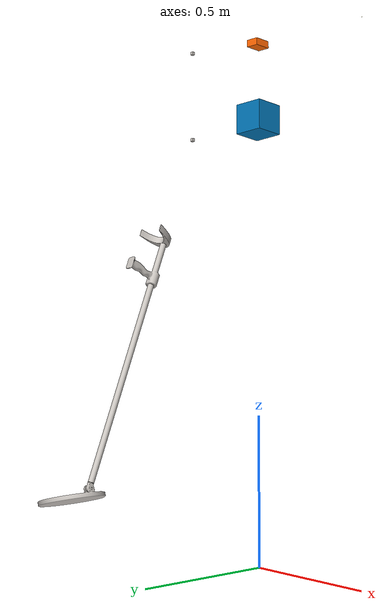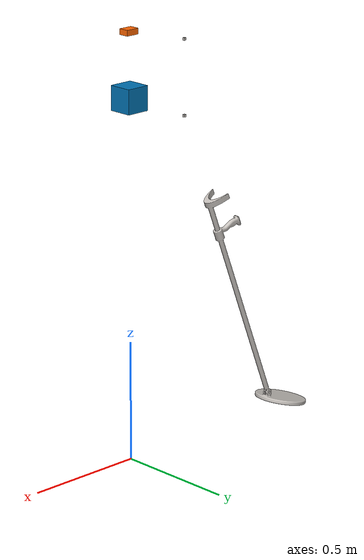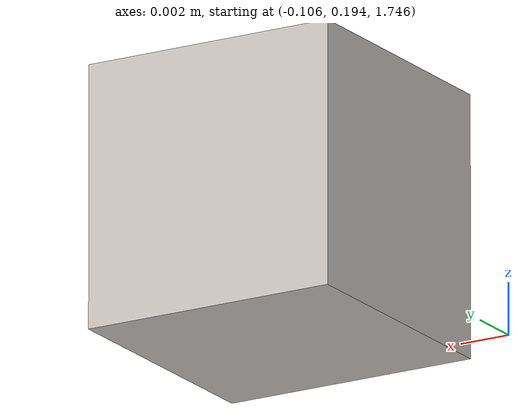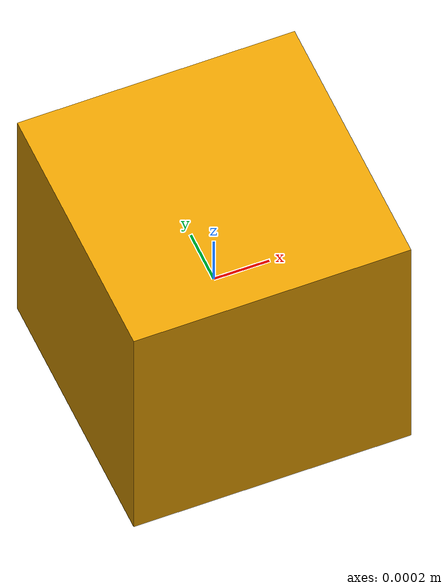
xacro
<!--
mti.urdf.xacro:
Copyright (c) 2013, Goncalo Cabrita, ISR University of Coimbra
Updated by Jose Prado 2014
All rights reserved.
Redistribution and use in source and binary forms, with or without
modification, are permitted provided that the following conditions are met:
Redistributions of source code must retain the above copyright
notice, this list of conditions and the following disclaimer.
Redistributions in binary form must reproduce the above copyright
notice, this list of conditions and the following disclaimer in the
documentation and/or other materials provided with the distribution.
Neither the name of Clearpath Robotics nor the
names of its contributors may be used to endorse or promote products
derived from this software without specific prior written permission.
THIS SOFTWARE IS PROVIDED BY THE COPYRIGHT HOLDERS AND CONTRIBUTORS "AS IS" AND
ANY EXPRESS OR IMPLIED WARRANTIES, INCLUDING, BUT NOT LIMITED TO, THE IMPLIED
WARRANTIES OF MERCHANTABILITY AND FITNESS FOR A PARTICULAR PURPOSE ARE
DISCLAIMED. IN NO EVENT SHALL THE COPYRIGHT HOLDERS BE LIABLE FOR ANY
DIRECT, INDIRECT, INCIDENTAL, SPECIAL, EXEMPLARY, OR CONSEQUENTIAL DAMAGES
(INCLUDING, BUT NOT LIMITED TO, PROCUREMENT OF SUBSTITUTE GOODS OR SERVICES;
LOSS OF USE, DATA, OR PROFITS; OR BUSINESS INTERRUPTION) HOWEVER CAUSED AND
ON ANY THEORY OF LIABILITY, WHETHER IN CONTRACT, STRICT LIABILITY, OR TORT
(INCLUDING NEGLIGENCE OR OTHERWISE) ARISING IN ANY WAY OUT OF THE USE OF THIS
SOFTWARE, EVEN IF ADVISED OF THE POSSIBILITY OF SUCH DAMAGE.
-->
<?xml version="1.0"?>
<!--
Author: Jose Prado/ISR University of Coimbra

This program contains the description of the FSR Backpack, by the ISR University of Coimbra
-->
<robot
  xmlns:xi="http://www.w3.org/2001/XInclude"
    xmlns:gazebo="http://playerstage.sourceforge.net/gazebo/xmlschema/#gz"
    xmlns:model="http://playerstage.sourceforge.net/gazebo/xmlschema/#model"
    xmlns:sensor="http://playerstage.sourceforge.net/gazebo/xmlschema/#sensor"
    xmlns:body="http://playerstage.sourceforge.net/gazebo/xmlschema/#body"
    xmlns:geom="http://playerstage.sourceforge.net/gazebo/xmlschema/#geom"
    xmlns:joint="http://playerstage.sourceforge.net/gazebo/xmlschema/#joint"
    xmlns:controller="http://playerstage.sourceforge.net/gazebo/xmlschema/#controller"
    xmlns:interface="http://playerstage.sourceforge.net/gazebo/xmlschema/#interface"
    xmlns:rendering="http://playerstage.sourceforge.net/gazebo/xmlschema/#rendering"
    xmlns:renderable="http://playerstage.sourceforge.net/gazebo/xmlschema/#renderable"
    xmlns:physics="http://playerstage.sourceforge.net/gazebo/xmlschema/#physics"
    xmlns:xacro="http://ros.org/wiki/xacro"
    name="backpack">

    <xacro:include filename="$(find fsr_backpack_description)/urdf/fsr_backpack_parts/mti.urdf.xacro" />

	<!-- world axis -->
	<link name="world">
		<visual>
			<origin xyz="0 0 0" rpy="0 0 0" />
			<geometry>
				<box size="0.001 0.001 0.001" />
			</geometry>
		</visual>
	</link>
	<joint name="base_footprint_world" type="fixed">
		<parent link="world"/>
		<child link="base_footprint"/>
		<origin xyz="0 0 0" rpy="0 0 0" />
	</joint>

	<link name="base_footprint">
		<visual>
			<origin xyz="0 0 0" rpy="0 0 0" />
			<geometry>
				<box size="0.0001 0.0001 0.0001" /> <!-- dimensoes apenas representativas -->
			</geometry>
			 <material
				name="Gray">
			<color
			rgba="0.776470588235294 0.756862745098039 0.737254901960784 1" />
			</material>
		</visual>
	</link>

	<!-- IMU: MTi macro -->
    <mti parent="base_link" x="0" y="0" z="0.25" rx="0" ry="0" rz="0" />

    <!-- GPS -->
	<link name="gps">
		<visual>
			<origin xyz="0 0 0" rpy="0 0 0" />
			<geometry>
				<box size="0.001 0.001 0.001" />
			</geometry>
		</visual>
	</link>
	<joint name="gps_joint" type="fixed">
		<parent link="base_link"/>
		<child link="gps"/>
		<origin xyz="0 -0.45 0.25" rpy="0 0 0" />
	</joint>

<!-- Links and Joints (i.e., the robot) -->
	<link name="base_link">
		<visual>
			<origin xyz="0 0 0" rpy="0 0 0" />
			<geometry>
				<box size="0.1 0.1 0.1" />
			</geometry>
		</visual>
	</link>

	<joint name="base_footprint_base_link_joint" type="fixed">
		<parent link="base_footprint"/>
		<child link="base_link" />
		<origin xyz="0 0 1.5" rpy="0 0 0" /> <!-- 1.5m altura do ombro da pessoa  -->
	</joint>

	<joint name="arm_base_link_joint" type="fixed">
		<parent link="base_link"/>
		<child link="arm_base_link"/>
		<origin xyz="-0.1 0.20 0.25" rpy="0 0 0" /> <!-- ombro fica a 10cm para frente, 20cm ao lado e 25cm a cima do centro -->
	</joint>

	<!-- arm  -->
	<link name="arm_base_link"> <!-- human shoulder -->
    <inertial>
      <origin
        xyz="0 0 0"
        rpy="0 0 0" />
      <mass
        value="1.1522" />
      <inertia
        ixx="0.011095"
        ixy="0.0012342"
        ixz="0.00013298"
        iyy="0.0047097"
        iyz="0.00037003"
        izz="0.013904" />
    </inertial>
    <visual>
      <origin
        xyz="0 0 0"
        rpy="0 0 0" />
      <geometry>
       <box size="0.001 0.001 0.001" /> <!-- dimensoes apenas representativas -->
      </geometry>
      <material
        name="Gray">
        <color
          rgba="0.776470588235294 0.756862745098039 0.737254901960784 1" />
      </material>
    </visual>
    <collision>
      <origin
        xyz="0 0 0"
        rpy="0 0 0" />
      <geometry>
        <box size="0.001 0.001 0.001" /> <!-- dimensoes apenas representativas -->
      </geometry>
    </collision>
  </link>
  <gazebo reference="arm_base_link">
        <material>Gazebo/Grey</material>
	<selfCollide>false</selfCollide>
        <turnGravityOff>true</turnGravityOff>
  </gazebo>

  <link name="arm_axel_link"> <!-- human shoulder rotation link-->
    <inertial>
      <origin
        xyz="0 0 0"
        rpy="0 0 0" />
      <mass
        value="0.14047" />
      <inertia
        ixx="0.00082761"
        ixy="-1.2806E-12"
        ixz="5.0183E-11"
        iyy="1.9163E-05"
        iyz="1.7051E-06"
        izz="0.00081808" />
    </inertial>
    <visual>
      <origin
        xyz="0 0 0"
        rpy="0 0 0" />
      <geometry>
         <box size="0.01 0.01 0.01" /> <!-- dimensoes apenas representativas -->
      </geometry>
      <material
        name="Gray">
        <color
          rgba="0.776470588235294 0.756862745098039 0.737254901960784 1" />
      </material>
    </visual>
    <collision>
      <origin
        xyz="0 0 0"
        rpy="0 0 0" />
      <geometry>
         <box size="0.01 0.01 0.01" /> <!-- dimensoes apenas representativas -->
      </geometry>
    </collision>
  </link>
  <gazebo reference="arm_axel_link">
        <material>Gazebo/Grey</material>
        <turnGravityOff>true</turnGravityOff>
  </gazebo>

  <joint name="arm_axel_joint" type="revolute"> <!-- human shoulder rotation joint-->
    <origin
      xyz="0 0 0"
      rpy="1.5708 2.7207E-18 1.5708" />
    <parent
      link="arm_base_link" />
    <child
      link="arm_axel_link" />
    <axis
      xyz="0 -1 0" />
    <limit
      lower="-1.5708"
      upper="1.5708"
      effort="75"
      velocity="2" />
  </joint>

	 <!-- Up and Down Sholder -->
	<link name="arm_shoulder_up_down_link">
		<visual>
			<origin xyz="0 0 0" rpy="0 0 0" /> <!-- Deslocamento entre a TF e o desenho -->
			<geometry>
				<box size="0.01 0.01 0.01" />
			</geometry>
			<material
				name="DarkGray">
			<color
				rgba="0.776470588235294 0.756862745098039 0.737254901960784 1" />
			</material>
		</visual>
	</link>

	<joint name="arm_shoulder_up_down_joint" type="revolute"> <!-- human shoulder up down-->
    <origin
      xyz="0 0 0"
      rpy="0 2.7207E-18 0" />
    <parent
      link="arm_axel_link" />
    <child
      link="arm_shoulder_up_down_link" />
    <axis
      xyz="-1 0 0" />
    <limit
      lower="-1.5708"
      upper="1.5708"
      effort="75"
      velocity="2" />
  </joint>

   <!-- Up and Down Cotovelo Elbow -->
	<link name="arm_elbow_up_down_link">
		<visual>
			<origin xyz="0 0 0" rpy="0 0 0" /> <!-- Deslocamento entre a TF e o desenho -->
			<geometry>
				<box size="0.01 0.01 0.01" />
			</geometry>
			<material
				name="DarkGray">
			<color
				rgba="0.776470588235294 0.756862745098039 0.737254901960784 1" />
			</material>
		</visual>
	</link>

	<joint name="arm_elbow_up_down_joint" type="revolute"> <!-- human elbow up down-->
    <origin
      xyz="0 -0.30 0"
      rpy="0 2.7207E-18 0" />
    <parent
      link="arm_shoulder_up_down_link" />
    <child
      link="arm_elbow_up_down_link" />
    <axis
      xyz="-1 0 0" />
    <limit
      lower="-1.5708"
      upper="1.5708"
      effort="75"
      velocity="2" />
  </joint>

	<!-- Metal Detector Antena -->
	<link name="middle_coil">
		<visual>
			<origin xyz="0.1 -0.1 0" rpy="-0.37 3.1415 0" /> <!-- Deslocamento entre a TF e o desenho -->

			 <geometry>
				<mesh filename="package://fsr_backpack_description/models/Schiebel.STL" scale=".0008 .0008 .0008"/>
            </geometry>
            <material name="DarkGray" />

		</visual>
	</link>

	<joint name="metal_detector_arm_joint" type="fixed">
		<parent link="arm_elbow_up_down_link"/>
		<child link="middle_coil" />
		<origin xyz="0 -1.3 -0.5" rpy="0 0 0" /> <!-- TF: distancia entre ombro e coil 1.3m abaixo e 0.5m pra frente -->
	</joint>

	<!-- Liga a joint a um "actuator name" -->
	<transmission name="sweep">
    <type>transmission_interface/SimpleTransmission</type>
    <joint name="arm_axel_joint"/>
    <actuator name="sweep_motor">
      <hardwareInterface>EffortJointInterface</hardwareInterface>
      <mechanicalReduction>1</mechanicalReduction>
    </actuator>
  </transmission>

</robot>

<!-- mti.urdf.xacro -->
<robot xmlns:sensor="http://playerstage.sourceforge.net/gazebo/xmlschema/#sensor"
	xmlns:controller="http://playerstage.sourceforge.net/gazebo/xmlschema/#controller"
	xmlns:interface="http://playerstage.sourceforge.net/gazebo/xmlschema/#interface"
	xmlns:xacro="http://ros.org/wiki/xacro" name="mti">

	<xacro:include filename="$(find fsr_backpack_description)/urdf/fsr_backpack_parts/common.xacro" />

	<xacro:property name="mti_length" value="0.057" />
	<xacro:property name="mti_width" value="0.042" />
	<xacro:property name="mti_height" value="0.0235" />

	<xacro:macro name="mti" params="parent x y z rx ry rz">
  		<link name="base_imu">
			<xacro:box_inertial x="${mti_length}"  y="${mti_width}" z="${mti_height}" mass="0.052" />
			<visual>
      				<geometry>
        				<box size="${mti_length} ${mti_width} ${mti_height}"/>
      				</geometry>
				<origin rpy="0 0 0" xyz="0 0 0"/>
      				<material name="Orange">
        				<color rgba="1 0.4 0 1"/>
      				</material>
    			</visual>
    			<collision>
      				<geometry>
        				<box size="${mti_length} ${mti_width} ${mti_height}"/>
      				</geometry>
    			</collision>
  		</link>

		<joint name="base_imu_joint" type="fixed">
			<parent link="${parent}"/>
			<child link="base_imu"/>
			<origin xyz="${x} ${y} ${z+mti_height/2}" rpy="${rx} ${ry} ${rz}" />
		</joint>

		<gazebo reference="base_imu">
        		<material>Gazebo/Orange</material>
        		<turnGravityOff>false</turnGravityOff>
    		</gazebo>

		<gazebo>
		    <plugin name="gazebo_ros_imu" filename="libgazebo_ros_imu.so">
			<alwaysOn>true</alwaysOn>
			<bodyName>base_imu</bodyName>
			<topicName>/imu/data</topicName>
			<serviceName>imu_service</serviceName>
			<gaussianNoise>0.0</gaussianNoise>
			<updateRate>30.0</updateRate>
		    </plugin>
		</gazebo>

	</xacro:macro>
</robot>
